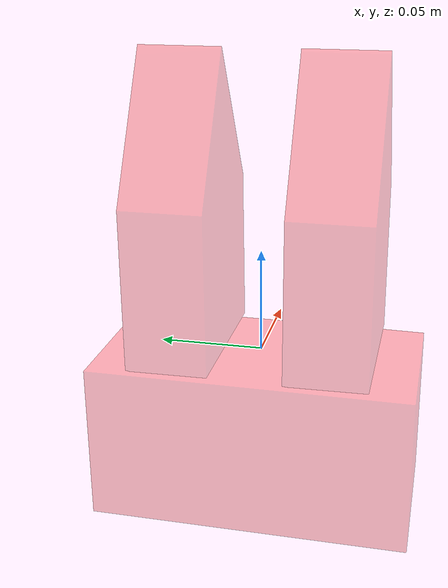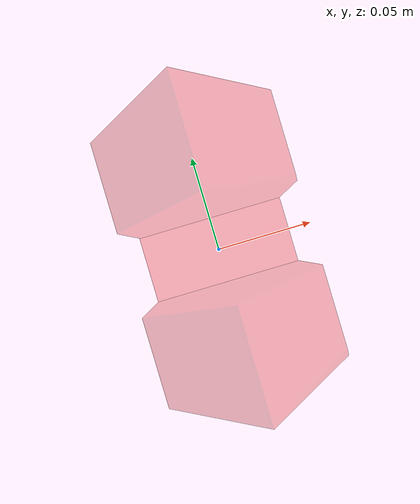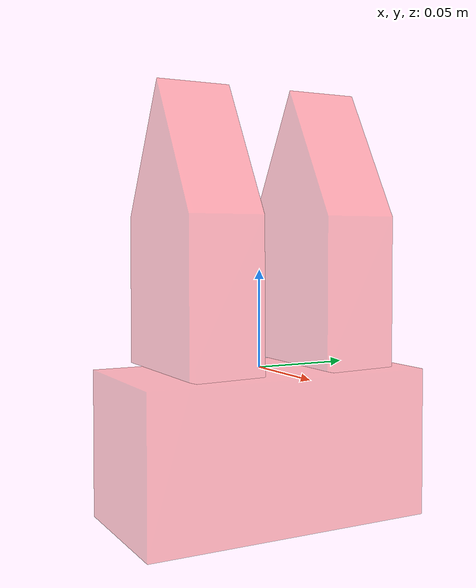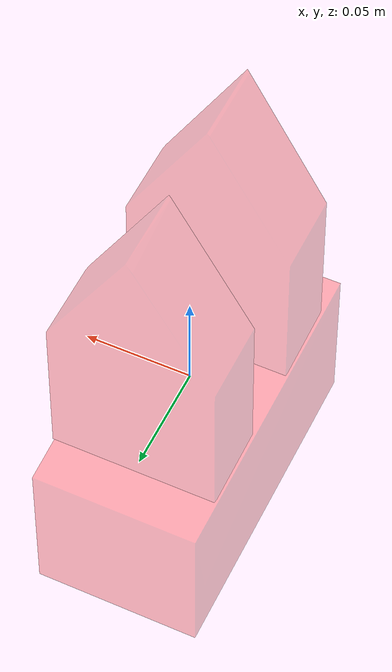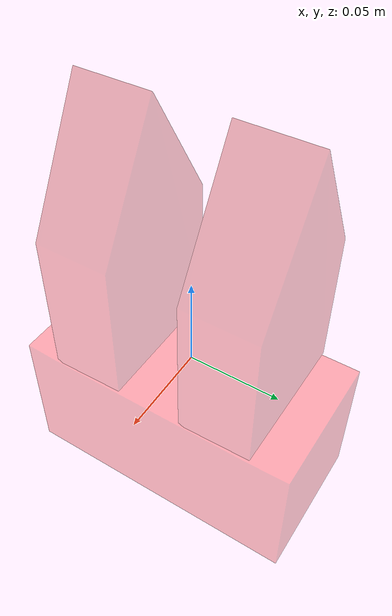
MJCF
<mujoco model="twin_tower_goal">
  <worldbody>
    <body name="twin_tower_goal">
      <body name="twin_tower_goal_visual">
        <geom pos="0 0 0" mesh="twin_tower_goal_0" type="mesh" rgba="1 0 0 0.3" conaffinity="0" contype="0" group="0" mass="0.0001"/>
        <geom pos="0 0 0" mesh="twin_tower_goal_1" type="mesh" rgba="1 0 0 0.3" conaffinity="0" contype="0" group="0" mass="0.0001"/>
        <geom pos="0 0 0" mesh="twin_tower_goal_2" type="mesh" rgba="1 0 0 0.3" conaffinity="0" contype="0" group="0" mass="0.0001"/>
      </body>
    </body>
  </worldbody>
  <asset>
    <mesh file="meshes/twin_tower_goal_0.stl" name="twin_tower_goal_0" scale="0.0011 0.0011 0.0011"/>
    <mesh file="meshes/twin_tower_goal_1.stl" name="twin_tower_goal_1" scale="0.0011 0.0011 0.0011"/>
    <mesh file="meshes/twin_tower_goal_2.stl" name="twin_tower_goal_2" scale="0.0011 0.0011 0.0011"/>
  </asset>
</mujoco>
